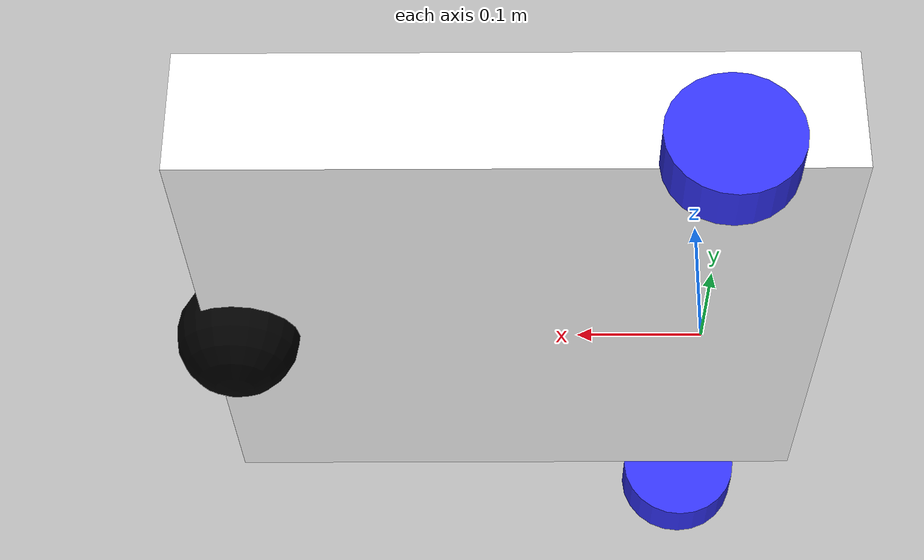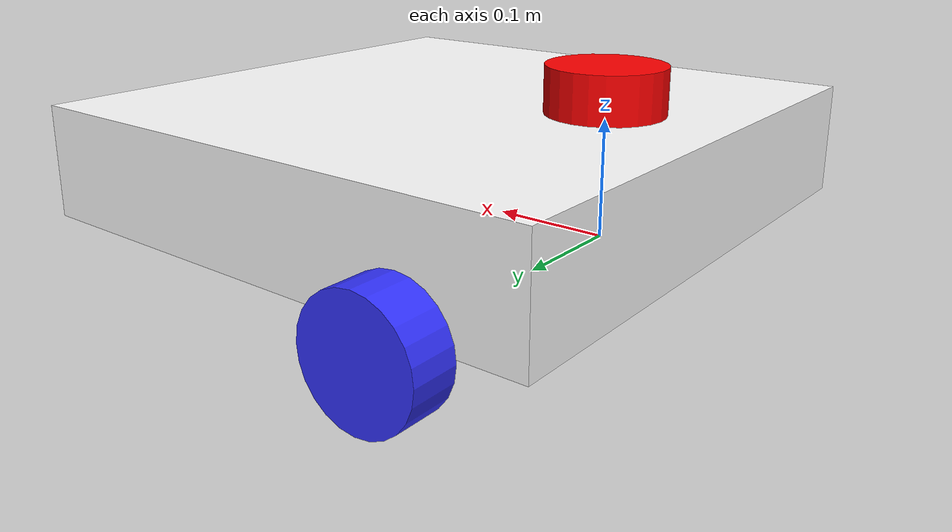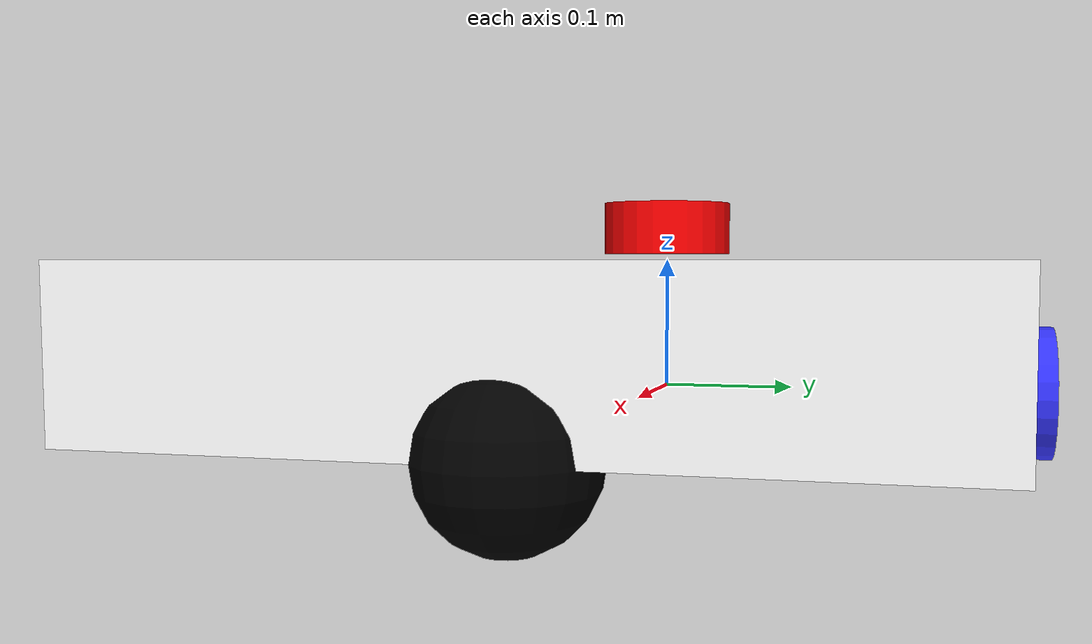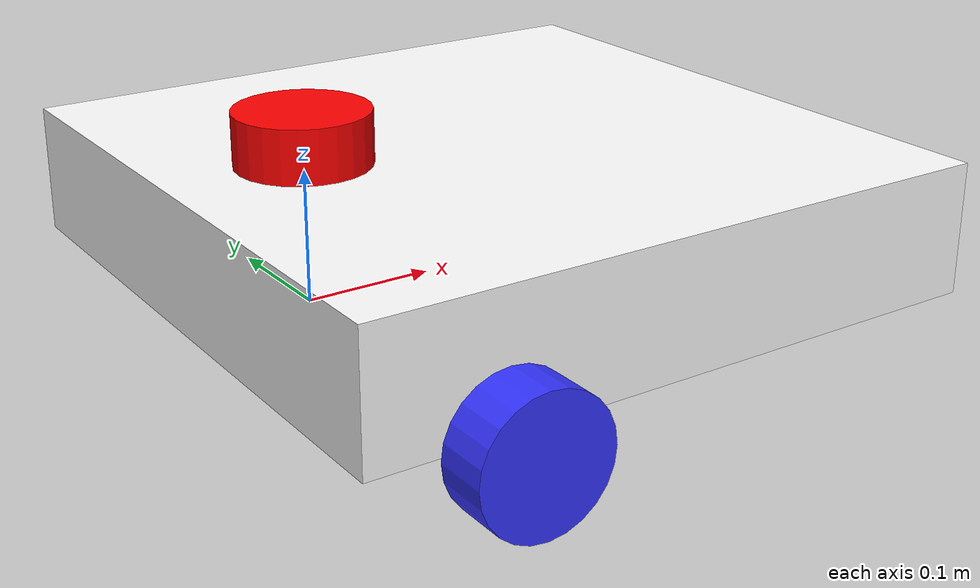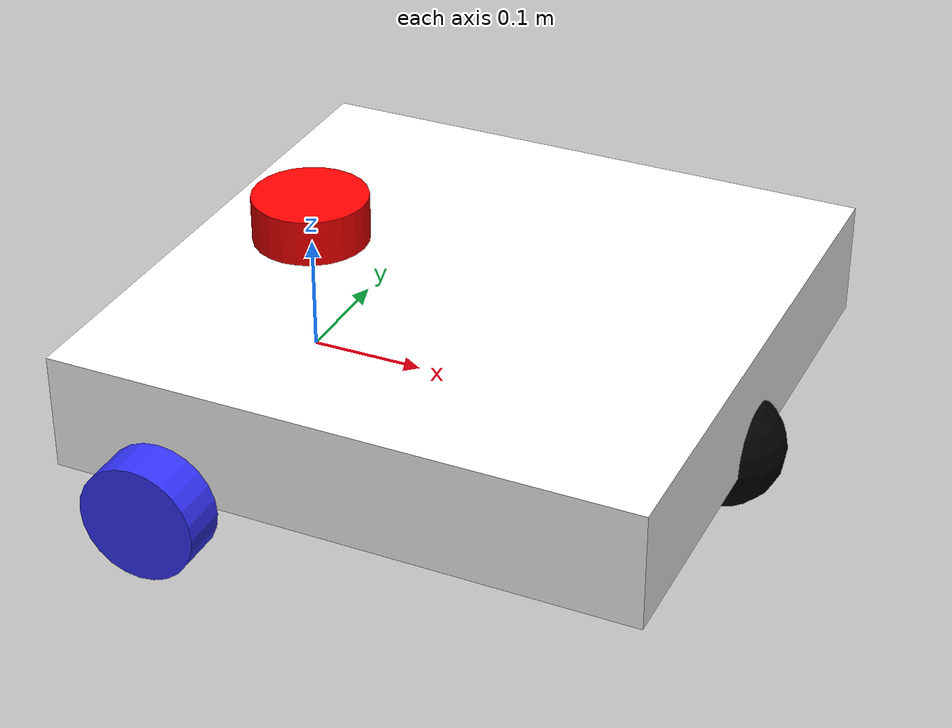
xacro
<?xml version="1.0"?>
<robot xmlns:xacro="http://www.ros.org/wiki/xacro"  name="robot">

    <xacro:include filename="robot_core.xacro" />
    <xacro:include filename="ros2_control.xacro"/>

    <xacro:include filename="lidar.xacro"/>

</robot>

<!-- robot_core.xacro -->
<robot xmlns:xacro="http://www.ros.org/wiki/xacro" >

    <xacro:include filename="inertial_macros.xacro"/>

    <material name="white">
        <color rgba="1 1 1 1" />
    </material>

    <material name="orange">
        <color rgba="1 0.3 0.1 1"/>
    </material>

    <material name="blue">
        <color rgba="0.2 0.2 1 1"/>
    </material>

    <material name="black">
        <color rgba="0 0 0 1"/>
    </material>

    <!-- BASE LINK -->

    <link name="base_link">

    </link>

    <!-- Base footprint link-->
    <joint name="base_footprint_joint" type="fixed">
        <parent link="base_link"/>
        <child link="base_footprint"/>
        <origin xyz="0 0 0" rpy="0 0 0"/>
    </joint>

    <link name="base_footprint">
    </link>

    <!-- CHASSIS LINK -->

    <joint name="chassis_joint" type="fixed">
        <parent link="base_link"/>
        <child link="chassis"/>
        <origin xyz="-0.1 0 0"/>
    </joint>

    <link name="chassis">
        <visual>
            <origin xyz="0.25 0 0.05"/>
            <geometry>
                <box size="0.5 0.5 0.1"/>
            </geometry>
            <material name="white"/>
        </visual>
        <collision>
            <origin xyz="0.25 0 0.05"/>
            <geometry>
                <box size="0.5 0.5 0.1"/>
            </geometry>
        </collision>
        <xacro:inertial_box mass="0.5" x="0.5" y="0.5" z="0.1">
            <origin xyz="0.25 0 0.05" rpy="0 0 0"/>
        </xacro:inertial_box>
    </link>

    <gazebo reference="chassis">
        <material>Gazebo/White</material>
    </gazebo>

    <!-- LEFT WHEEL LINK -->

    <joint name="left_wheel_joint" type="continuous">
        <parent link="base_link"/>
        <child link="left_wheel"/>
        <origin xyz="0 0.275 0" rpy="-${pi/2} 0 0" />
        <axis xyz="0 0 1"/>
    </joint>

    <link name="left_wheel">
        <visual>
            <geometry>
                <cylinder radius="0.05" length="0.04"/>
            </geometry>
            <material name="blue"/>
        </visual>
        <collision>
            <geometry>
                <cylinder radius="0.05" length="0.04"/>
            </geometry>
        </collision>
        <xacro:inertial_cylinder mass="0.1" length="0.04" radius="0.05">
            <origin xyz="0 0 0" rpy="0 0 0"/>
        </xacro:inertial_cylinder>
    </link>

    <gazebo reference="left_wheel">
        <material>Gazebo/Blue</material>
    </gazebo>

    <!-- RIGHT WHEEL LINK -->

    <joint name="right_wheel_joint" type="continuous">
        <parent link="base_link"/>
        <child link="right_wheel"/>
        <origin xyz="0 -0.275 0" rpy="${pi/2} 0 0" />        <!-- y distance is half of body + half of wheel + 0.005 gap -->
        <axis xyz="0 0 -1"/>
    </joint>

    <link name="right_wheel">
        <visual>
            <geometry>
                <cylinder radius="0.05" length="0.04"/>
            </geometry>
            <material name="blue"/>
        </visual>
        <collision>
            <geometry>
                <cylinder radius="0.05" length="0.04"/>
            </geometry>
        </collision>
        <xacro:inertial_cylinder mass="0.1" length="0.04" radius="0.05">
            <origin xyz="0 0 0" rpy="0 0 0"/>
        </xacro:inertial_cylinder>
    </link>

    <gazebo reference="right_wheel">
        <material>Gazebo/Blue</material>
    </gazebo>

    <!-- CASTER WHEEL LINK -->

    <joint name="caster_wheel_joint" type="fixed">
        <parent link="chassis"/>
        <child link="caster_wheel"/>
        <origin xyz="0.475 0 0"/>
    </joint>

    <link name="caster_wheel">
        <visual>
            <geometry>
                <sphere radius="0.05"/>
            </geometry>
            <material name="black"/>
        </visual>
        <collision>
            <geometry>
                <sphere radius="0.05"/>
            </geometry>
        </collision>
        <xacro:inertial_sphere mass="0.1" radius="0.05">
            <origin xyz="0 0 0" rpy="0 0 0"/>
        </xacro:inertial_sphere>
    </link>

    <gazebo reference="caster_wheel">
        <material>Gazebo/Black</material>
        <mu1 value="0.001"/>
        <mu2 value="0.001"/>
    </gazebo>

</robot>

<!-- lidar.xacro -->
<robot xmlns:xacro="http://www.ros.org/wiki/xacro" >

    <joint name="laser_joint" type="fixed">
        <parent link="chassis"/>
        <child link="laser_frame"/>
        <origin xyz="0.1 0 0.125" rpy="0 0 0"/>
    </joint>

    <link name="laser_frame">
        <visual>
            <geometry>
                <cylinder radius="0.05" length="0.04"/>
            </geometry>
            <material name="red"/>
        </visual>
        <collision>
            <geometry>
                <cylinder radius="0.05" length="0.04"/>
            </geometry>
        </collision>
        <xacro:inertial_cylinder mass="0.1" length="0.04" radius="0.05">
            <origin xyz="0 0 0" rpy="0 0 0"/>
        </xacro:inertial_cylinder>
    </link>

    <material name="red">
        <color rgba="1 0 0 1"/>
    </material>

    <gazebo reference="laser_frame">
        <material>Gazebo/Red</material>

        <sensor name="laser" type="ray">
            <pose> 0 0 0 0 0 0 </pose>
            <visualize>true</visualize>
            <update_rate>10</update_rate>
            <ray>
                <scan>
                    <horizontal>
                        <samples>360</samples>
                        <min_angle>-3.14</min_angle>
                        <max_angle>3.14</max_angle>
                    </horizontal>
                </scan>
                <range>
                    <min>0.1</min>
                    <max>40</max>
                </range>
            </ray>
            <plugin name="laser_controller" filename="libgazebo_ros_ray_sensor.so">
                <ros>
                    <argument>~/out:=scan</argument> <!--ros topic scan -->
                </ros>
                <output_type>sensor_msgs/LaserScan</output_type>
                <frame_name>laser_frame</frame_name>
            </plugin>
        </sensor>

    </gazebo>

</robot>
